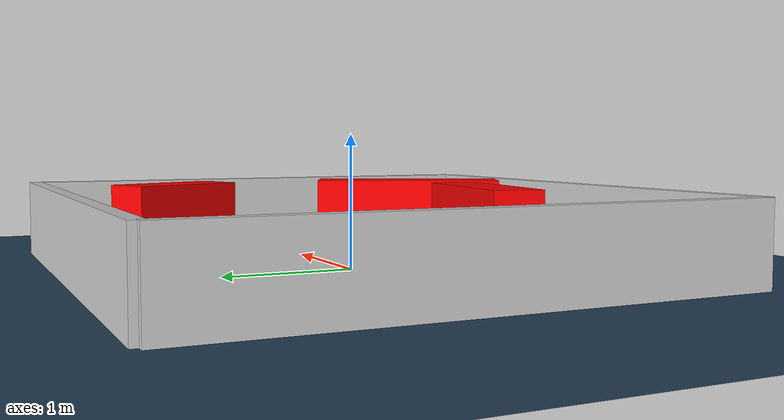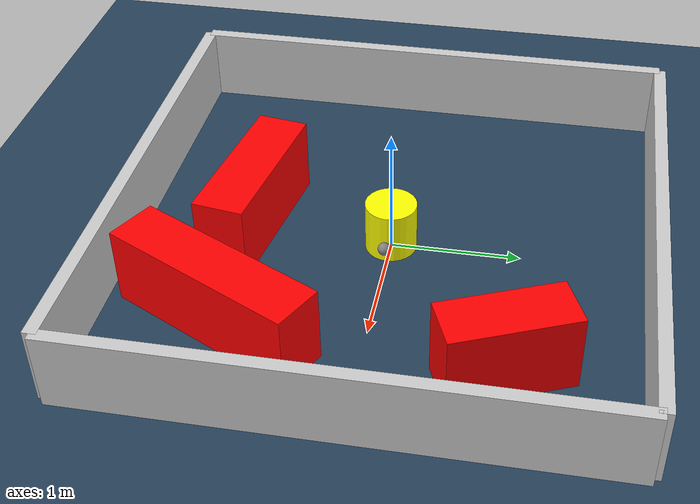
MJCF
<?xml version="1.0" ?>
<mujoco model="generated_environment">
  <option timestep="0.01" integrator="RK4" cone="elliptic"/>
  <default>
    <geom density="1"/>
  </default>
  <asset>
    <texture builtin="gradient" height="3072" rgb1="0.3 0.5 0.7" rgb2="0 0 0" type="skybox" width="512"/>
    <texture builtin="checker" height="300" mark="edge" markrgb="0.8 0.8 0.8" name="groundplane" rgb1="0.2 0.3 0.4" rgb2="0.1 0.2 0.3" type="2d" width="300"/>
    <material name="groundplane" reflectance="0.2" texrepeat="5 5" texture="groundplane" texuniform="true"/>
    <material name="robot" rgba="0.0 1.0 0.0 1"/>
  </asset>
  <worldbody>
    <light dir="0 0 -1" directional="true" pos="0 0 1.5"/>
    <geom condim="4" friction="1.0 0.005 0.001" material="groundplane" name="floor" size="0 0 0.05" type="plane"/>
    <body name="walls">
      <geom name="wall_1" condim="4" pos="-2.0 0.0 0.3" rgba="0.800000011920929 0.800000011920929 0.800000011920929 1.0" size="0.05 2.0 0.3" type="box"/>
      <geom name="wall_2" condim="4" pos="2.0 0.0 0.3" rgba="0.800000011920929 0.800000011920929 0.800000011920929 1.0" size="0.05 2.0 0.3" type="box"/>
      <geom name="wall_3" condim="4" pos="0.0 -2.0 0.3" rgba="0.800000011920929 0.800000011920929 0.800000011920929 1.0" size="2.0 0.05 0.3" type="box"/>
      <geom name="wall_4" condim="4" pos="0.0 2.0 0.3" rgba="0.800000011920929 0.800000011920929 0.800000011920929 1.0" size="2.0 0.05 0.3" type="box"/>
    </body>
    <body name="robot">
      <joint name="joint_x" type="slide" pos="0 0 0" axis="1 0 0"/>
      <joint name="joint_y" type="slide" pos="0 0 0" axis="0 1 0"/>
      <geom name="robot" type="sphere" pos="0.3 0.0 0.2" size="0.05" mass="5." friction="1.0 0.005 0.0001" condim="4" rgba="0.5 0.5 0.5 1.0"/>
      <site name="sensor_ball"/>
    </body>
    <body name="obstacle_movable_1">
      <geom name="obstacle_movable_1" condim="4" pos="0.0 0.0 0.2" euler="0 0 0.0" friction="1.0 0.005 0.001" rgba="1.0 1.0 0.0 1.0" size="0.2 0.2 0.0" type="cylinder" mass="0.1"/>
      <joint type="free"/>
    </body>
    <body name="obstacle_2_static">
      <geom name="obstacle_2_static" condim="4" pos="-0.0821910927556746 -1.1026888060386293 0.3" euler="0 0 171.2037510085756" friction="1.0 0.005 0.001" rgba="1 0 0 1" size="0.6274098818353177 0.2 0.3" type="box"/>
    </body>
    <body name="obstacle_3_static">
      <geom name="obstacle_3_static" condim="4" pos="1.2719641230731944 0.9977354487424066 0.3" euler="0 0 293.1541455153416" friction="1.0 0.005 0.001" rgba="1 0 0 1" size="0.47173047857976863 0.2 0.3" type="box"/>
    </body>
    <body name="obstacle_4_static">
      <geom name="obstacle_4_static" condim="4" pos="1.115032382013237 -1.0658518115968603 0.3" euler="0 0 63.311540235851986" friction="1.0 0.005 0.001" rgba="1 0 0 1" size="0.7894526068208465 0.2 0.3" type="box"/>
    </body>
  </worldbody>
  <actuator>
    <motor name="actuator_x" joint="joint_x" gear="1" ctrlrange="-1 1"/>
    <motor name="actuator_y" joint="joint_y" gear="1" ctrlrange="-1 1"/>
  </actuator>
</mujoco>
